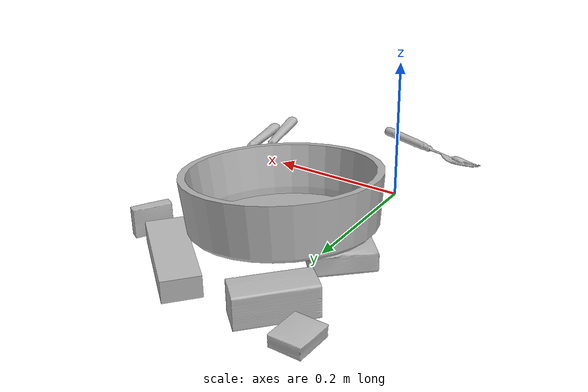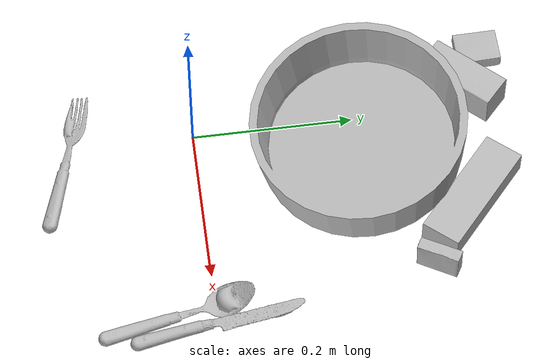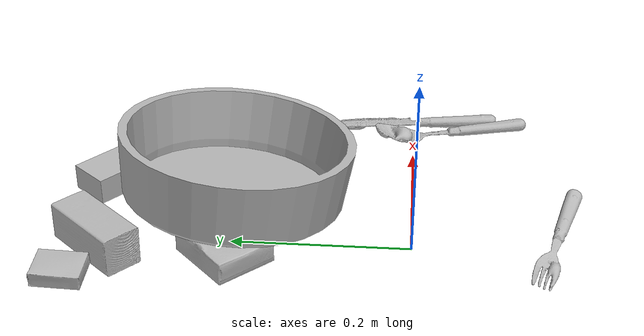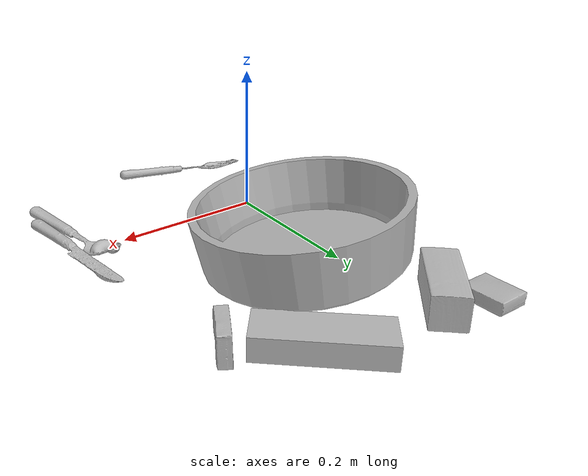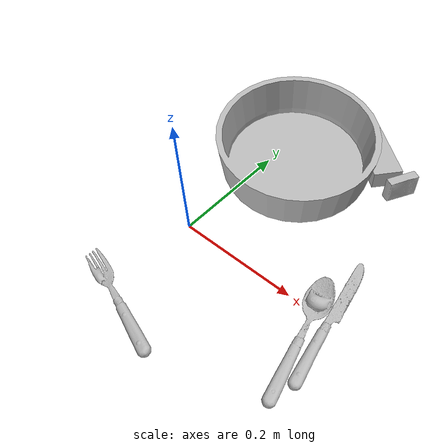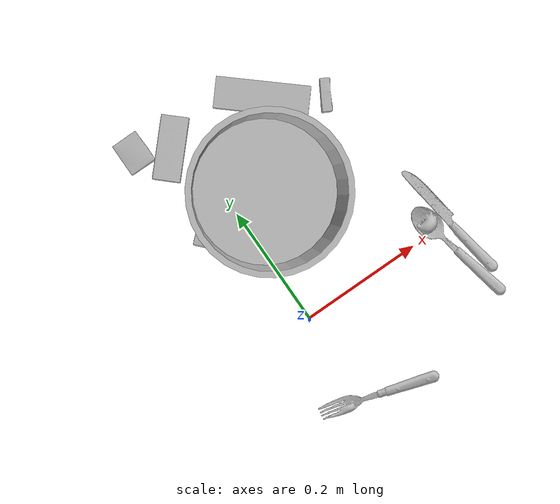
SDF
<sdf version="1.4">
  <world name="default">
    <light name="light1" type="point">
      <pose>0 0 1 0 0 0</pose>
      <diffuse>3 3 3 1</diffuse>
      <specular>3 3 3 1</specular>
    </light>
    <light name="light2" type="point">
      <pose>0 0.5 2 0 0 0</pose>
      <diffuse>1 1 1 1</diffuse>
      <specular>1 1 1 1</specular>
    </light>
    <light name="light3" type="point">
      <pose>0 0.5 2 0 0 0</pose>
      <diffuse>3 3 3 1</diffuse>
      <specular>3 3 3 1</specular>
    </light>
    <scene>
      <ambient>0.7 0.7 0.7</ambient>
    </scene>
    <model name="box11">
      <link name="link_box11">
        <collision name="default">
          <geometry>
            <mesh>
              <uri>model://sugar_box/collision_meshes/collision.obj</uri>
              <scale>0.5 0.5 0.5</scale>
            </mesh>
          </geometry>
          <surface>
            <friction>
              <ode>
                <mu>0.5</mu>
                <mu2>0.5</mu2>
              </ode>
            </friction>
          <contact>
        <ode>
            <max_vel>0</max_vel>
            <min_depth>0.0001</min_depth>
            <kp>1e8</kp>
        </ode>
    </contact></surface>
        </collision>
        <visual name="default">
          <geometry>
            <mesh>
              <uri>model://sugar_box/visual_meshes/visual.dae</uri>
              <scale>0.5 0.5 0.5</scale>
            </mesh>
          </geometry>
        </visual>
        <inertial>
          <mass>0.0727815181016922</mass>
          <pose>0.0005171863595023751 1.924554817378521e-05 -0.00018182402709499002 -0.0004046263004245651 0.001050663405794887 0.002615379021776999</pose>
          <inertia>
            <ixx>1.5160335e-05</ixx>
            <iyy>4.900132e-05</iyy>
            <izz>5.8660433e-05</izz>
            <ixy>0</ixy>
            <ixz>0</ixz>
            <iyz>0</iyz>
          </inertia>
        </inertial>
      </link>
      <pose>0.07428433746099472 0.2078414410352707 0.011491967365145683 0.01958021580889537 -0.023224013165756837 1.0514131770967408</pose>
    </model>
    <model name="box12">
      <link name="link_box12">
        <collision name="default">
          <geometry>
            <mesh>
              <uri>model://gelatin_box/collision_meshes/collision.obj</uri>
              <scale>1.0 1.0 1.0</scale>
            </mesh>
          </geometry>
          <surface>
            <friction>
              <ode>
                <mu>0.5</mu>
                <mu2>0.5</mu2>
              </ode>
            </friction>
          <contact>
        <ode>
            <max_vel>0</max_vel>
            <min_depth>0.0001</min_depth>
            <kp>1e8</kp>
        </ode>
    </contact></surface>
        </collision>
        <visual name="default">
          <geometry>
            <mesh>
              <uri>model://gelatin_box/visual_meshes/visual.dae</uri>
              <scale>1.0 1.0 1.0</scale>
            </mesh>
          </geometry>
        </visual>
        <inertial>
          <mass>0.2761145234107971</mass>
          <pose>0.000431961816502735 0.00011156871187267825 -0.0003640321083366871 -0.0010503719804291966 -0.004755819155973465 0.01644055947187314</pose>
          <inertia>
            <ixx>0.00019491432</ixx>
            <iyy>0.00013922628</iyy>
            <izz>0.00029670302</izz>
            <ixy>0</ixy>
            <ixz>0</ixz>
            <iyz>0</iyz>
          </inertia>
        </inertial>
      </link>
      <pose>-0.026877518743276596 0.20277738571166992 0.015168781392276287 0.005621555627872244 -0.007403159159031457 2.309778243038341</pose>
    </model>
    <model name="box13">
      <link name="link_box13">
        <collision name="default">
          <geometry>
            <mesh>
              <uri>model://jenga/collision_meshes/collision.obj</uri>
              <scale>1.0 1.0 1.0</scale>
            </mesh>
          </geometry>
          <surface>
            <friction>
              <ode>
                <mu>0.5</mu>
                <mu2>0.5</mu2>
              </ode>
            </friction>
          <contact>
        <ode>
            <max_vel>0</max_vel>
            <min_depth>0.0001</min_depth>
            <kp>1e8</kp>
        </ode>
    </contact></surface>
        </collision>
        <visual name="default">
          <geometry>
            <mesh>
              <uri>model://jenga/visual_meshes/visual.dae</uri>
              <scale>1.0 1.0 1.0</scale>
            </mesh>
          </geometry>
        </visual>
        <inertial>
          <mass>0.30891793966293335</mass>
          <pose>-2.502855807051674e-07 -0.0001025000965455547 -4.0923401684267446e-05 0.0 -7.34215461761844e-07 0.0</pose>
          <inertia>
            <ixx>8.548509e-05</ixx>
            <iyy>0.00057924463</iyy>
            <izz>0.0006183929</izz>
            <ixy>0</ixy>
            <ixz>0</ixz>
            <iyz>0</iyz>
          </inertia>
        </inertial>
      </link>
      <pose>0.1381738781929016 0.328057199716568 0.015000713989138603 -1.8560062727034757e-05 -1.0089288685145163e-05 2.425893697752482</pose>
    </model>
    <model name="box21">
      <link name="link_box21">
        <collision name="default">
          <geometry>
            <mesh>
              <uri>model://pudding_box/collision_meshes/collision.obj</uri>
              <scale>0.5 0.5 0.5</scale>
            </mesh>
          </geometry>
          <surface>
            <friction>
              <ode>
                <mu>0.5</mu>
                <mu2>0.5</mu2>
              </ode>
            </friction>
          <contact>
        <ode>
            <max_vel>0</max_vel>
            <min_depth>0.0001</min_depth>
            <kp>1e8</kp>
        </ode>
    </contact></surface>
        </collision>
        <visual name="default">
          <geometry>
            <mesh>
              <uri>model://pudding_box/visual_meshes/visual.dae</uri>
              <scale>0.5 0.5 0.5</scale>
            </mesh>
          </geometry>
        </visual>
        <inertial>
          <mass>0.049023520201444626</mass>
          <pose>0.0002447411243338138 0.00040339428232982755 -0.0002594413817860186 0.005213100395594636 -0.006603798704538055 0.020079825164231697</pose>
          <inertia>
            <ixx>1.3854642e-05</ixx>
            <iyy>9.321502e-06</iyy>
            <izz>2.046e-05</izz>
            <ixy>0</ixy>
            <ixz>0</ixz>
            <iyz>0</iyz>
          </inertia>
        </inertial>
      </link>
      <pose>-0.07771768420934677 0.37139397859573364 0.009862903505563736 0.0223486348475714 -0.011391651232737323 -0.003857866671951213</pose>
    </model>
    <model name="box22">
      <link name="link_box22">
        <collision name="default">
          <geometry>
            <mesh>
              <uri>model://wood_block/collision_meshes/collision.obj</uri>
              <scale>0.5 0.5 0.5</scale>
            </mesh>
          </geometry>
          <surface>
            <friction>
              <ode>
                <mu>0.5</mu>
                <mu2>0.5</mu2>
              </ode>
            </friction>
          <contact>
        <ode>
            <max_vel>0</max_vel>
            <min_depth>0.0001</min_depth>
            <kp>1e8</kp>
        </ode>
    </contact></surface>
        </collision>
        <visual name="default">
          <geometry>
            <mesh>
              <uri>model://wood_block/visual_meshes/visual.dae</uri>
              <scale>0.5 0.5 0.5</scale>
            </mesh>
          </geometry>
        </visual>
        <inertial>
          <mass>0.3074011206626892</mass>
          <pose>-2.9066577553749084e-06 -0.000285404734313488 0.00013204291462898254 -0.05220975528717129 -0.005192695583989696 -0.0068613793241849635</pose>
          <inertia>
            <ixx>0.00010283729</ixx>
            <iyy>0.00032486304</iyy>
            <izz>0.0003236479</izz>
            <ixy>0</ixy>
            <ixz>0</ixz>
            <iyz>0</iyz>
          </inertia>
        </inertial>
      </link>
      <pose>-0.025468995794653893 0.3429444134235382 0.022527484223246574 -0.015843744695058788 -0.0004013150510934215 -2.3173964451017084</pose>
    </model>
    <model name="box23">
      <link name="link_box23">
        <collision name="default">
          <geometry>
            <mesh>
              <uri>model://cracker_box/collision_meshes/collision.obj</uri>
              <scale>0.25 0.25 0.25</scale>
            </mesh>
          </geometry>
          <surface>
            <friction>
              <ode>
                <mu>0.5</mu>
                <mu2>0.5</mu2>
              </ode>
            </friction>
          <contact>
        <ode>
            <max_vel>0</max_vel>
            <min_depth>0.0001</min_depth>
            <kp>1e8</kp>
        </ode>
    </contact></surface>
        </collision>
        <visual name="default">
          <geometry>
            <mesh>
              <uri>model://cracker_box/visual_meshes/visual.dae</uri>
              <scale>0.25 0.25 0.25</scale>
            </mesh>
          </geometry>
        </visual>
        <inertial>
          <mass>0.04833315312862396</mass>
          <pose>0.00023660357692278922 6.358561950037256e-05 -0.00042573834070935845 -0.0003162077466025917 -0.011106490531569568 0.002546795235651085</pose>
          <inertia>
            <ixx>7.683624e-06</ixx>
            <iyy>1.268717e-05</iyy>
            <izz>1.8105757e-05</izz>
            <ixy>0</ixy>
            <ixz>0</ixz>
            <iyz>0</iyz>
          </inertia>
        </inertial>
      </link>
      <pose>0.22198857367038727 0.27309083938598633 0.020534992218017578 -1.6029393783166834 0.0037614832955099185 -2.102376776660241</pose>
    </model>
    <model name="plate1">
      <link name="link_plate1">
        <collision name="default">
          <geometry>
            <mesh>
              <uri>model://pan_tefal/collision_meshes/collision.obj</uri>
              <scale>1.0 1.0 1.0</scale>
            </mesh>
          </geometry>
          <surface>
            <friction>
              <ode>
                <mu>0.5</mu>
                <mu2>0.5</mu2>
              </ode>
            </friction>
          <contact>
        <ode>
            <max_vel>0</max_vel>
            <min_depth>0.0001</min_depth>
            <kp>1e8</kp>
        </ode>
    </contact></surface>
        </collision>
        <visual name="default">
          <geometry>
            <mesh>
              <uri>model://pan_tefal/visual_meshes/visual.dae</uri>
              <scale>1.0 1.0 1.0</scale>
            </mesh>
          </geometry>
        </visual>
        <inertial>
          <mass>1.5598481893539429</mass>
          <pose>-0.0001800245518097654 3.279111842857674e-05 -0.008514934219419956 0.0008190275877392404 -0.0003301333888364595 -0.33185859522575717</pose>
          <inertia>
            <ixx>0.010767555</ixx>
            <iyy>0.010836974</iyy>
            <izz>0.019820997</izz>
            <ixy>0</ixy>
            <ixz>0</ixz>
            <iyz>0</iyz>
          </inertia>
        </inertial>
      </link>
      <pose>0.05992705747485161 0.19994361698627472 0.0631524920463562 -0.07506062513830604 -0.1214359257327684 2.9162869218962326</pose>
    </model>
    <model name="silverware1">
      <link name="link_silverware1">
        <collision name="default">
          <geometry>
            <mesh>
              <uri>model://fork/collision_meshes/collision.obj</uri>
              <scale>1.0 1.0 1.0</scale>
            </mesh>
          </geometry>
          <surface>
            <friction>
              <ode>
                <mu>0.5</mu>
                <mu2>0.5</mu2>
              </ode>
            </friction>
          <contact>
        <ode>
            <max_vel>0</max_vel>
            <min_depth>0.0001</min_depth>
            <kp>1e8</kp>
        </ode>
    </contact></surface>
        </collision>
        <visual name="default">
          <geometry>
            <mesh>
              <uri>model://fork/visual_meshes/visual.dae</uri>
              <scale>1.0 1.0 1.0</scale>
            </mesh>
          </geometry>
        </visual>
        <inertial>
          <mass>0.024598950520157814</mass>
          <pose>-0.029570043087005615 0.0004658824182115495 0.0003218861820641905 -0.013552328184634912 -0.010977839901754499 0.014453902526732686</pose>
          <inertia>
            <ixx>8.623325e-07</ixx>
            <iyy>6.422079e-05</iyy>
            <izz>6.460647e-05</izz>
            <ixy>0</ixy>
            <ixz>0</ixz>
            <iyz>0</iyz>
          </inertia>
        </inertial>
      </link>
      <pose>0.02288484014570713 -0.16058748960494995 0.005710400640964508 -0.18296597675091722 0.024567780418254005 2.8425905684588213</pose>
    </model>
    <model name="silverware2">
      <link name="link_silverware2">
        <collision name="default">
          <geometry>
            <mesh>
              <uri>model://knife/collision_meshes/collision.obj</uri>
              <scale>1.0 1.0 1.0</scale>
            </mesh>
          </geometry>
          <surface>
            <friction>
              <ode>
                <mu>0.5</mu>
                <mu2>0.5</mu2>
              </ode>
            </friction>
          <contact>
        <ode>
            <max_vel>0</max_vel>
            <min_depth>0.0001</min_depth>
            <kp>1e8</kp>
        </ode>
    </contact></surface>
        </collision>
        <visual name="default">
          <geometry>
            <mesh>
              <uri>model://knife/visual_meshes/visual.dae</uri>
              <scale>1.0 1.0 1.0</scale>
            </mesh>
          </geometry>
        </visual>
        <inertial>
          <mass>0.03473280370235443</mass>
          <pose>-0.02378525584936142 0.0015275126788765192 5.062021955382079e-05 0.0730594717304457 0.017248417183571667 -0.007409821049452296</pose>
          <inertia>
            <ixx>9.858578e-07</ixx>
            <iyy>0.00013343782</iyy>
            <izz>0.00013375531</izz>
            <ixy>0</ixy>
            <ixz>0</ixz>
            <iyz>0</iyz>
          </inertia>
        </inertial>
      </link>
      <pose>0.270938515663147 0.0004207734018564224 0.007946519181132317 -0.023907220406235417 -0.014542510300144352 1.7101443234640104</pose>
    </model>
    <model name="silverware3">
      <link name="link_silverware3">
        <collision name="default">
          <geometry>
            <mesh>
              <uri>model://spoon/collision_meshes/collision.obj</uri>
              <scale>1.0 1.0 1.0</scale>
            </mesh>
          </geometry>
          <surface>
            <friction>
              <ode>
                <mu>0.5</mu>
                <mu2>0.5</mu2>
              </ode>
            </friction>
          <contact>
        <ode>
            <max_vel>0</max_vel>
            <min_depth>0.0001</min_depth>
            <kp>1e8</kp>
        </ode>
    </contact></surface>
        </collision>
        <visual name="default">
          <geometry>
            <mesh>
              <uri>model://spoon/visual_meshes/visual.dae</uri>
              <scale>1.0 1.0 1.0</scale>
            </mesh>
          </geometry>
        </visual>
        <inertial>
          <mass>0.02618301659822464</mass>
          <pose>-0.0055263168178498745 -0.00160341733135283 -0.0007271658978424966 0.035216710647368914 -0.039065848798616645 0.0061506127138874515</pose>
          <inertia>
            <ixx>1.4563418e-06</ixx>
            <iyy>9.96255e-05</iyy>
            <izz>0.000100343714</izz>
            <ixy>0</ixy>
            <ixz>0</ixz>
            <iyz>0</iyz>
          </inertia>
        </inertial>
      </link>
      <pose>0.2511758804321289 -0.04680243134498596 0.00838526152074337 0.006728768406647585 0.02689300594076365 1.7902929188004635</pose>
    </model>
  <physics type="ode">
      <max_contacts>50</max_contacts>
      <ode>
        <solver>
          <type>quick</type>
          <iters>75</iters>
        </solver>
        <constraints>
          <contact_max_correcting_vel>0</contact_max_correcting_vel>
          <contact_surface_layer>0</contact_surface_layer>
        </constraints>
      </ode>
    </physics></world>
</sdf>
